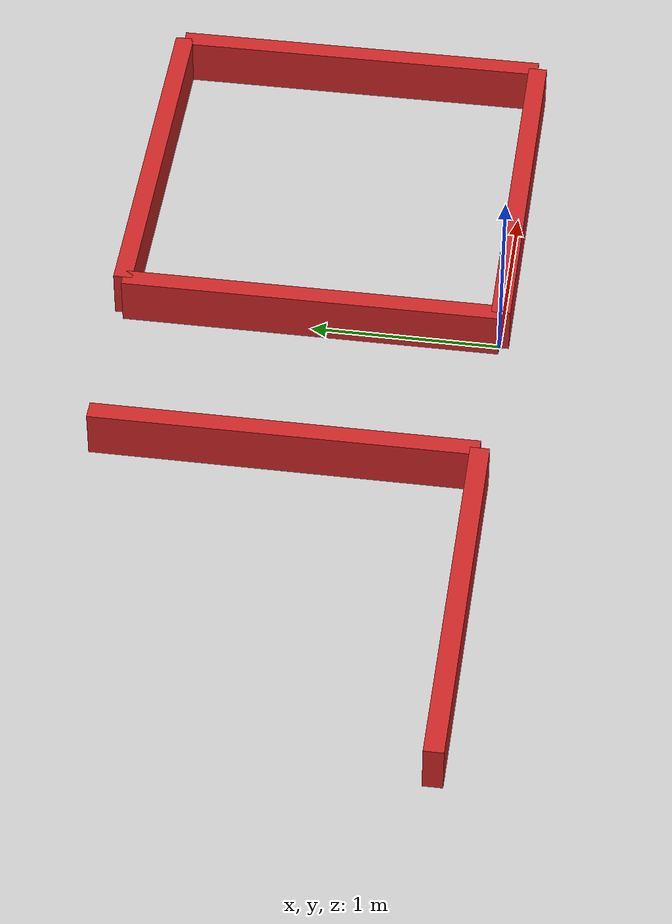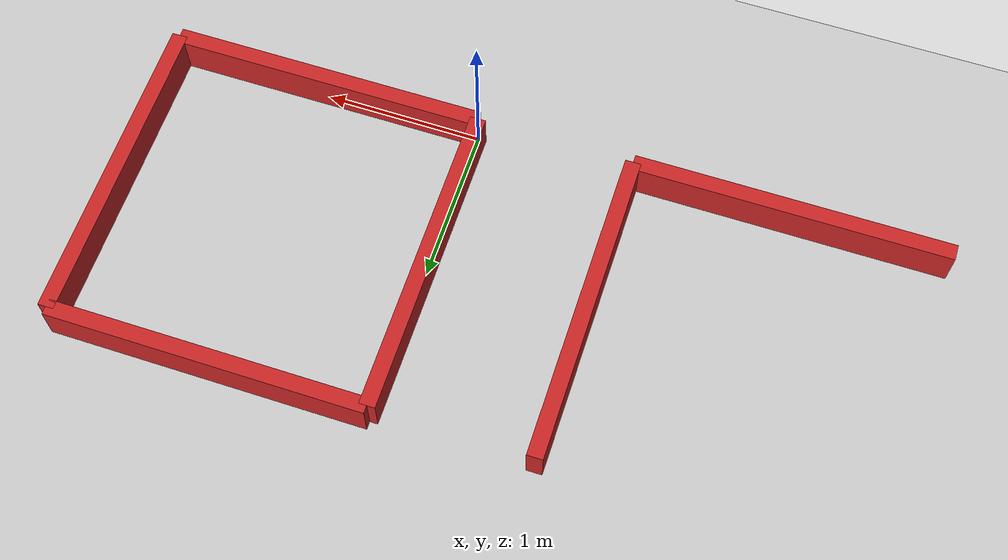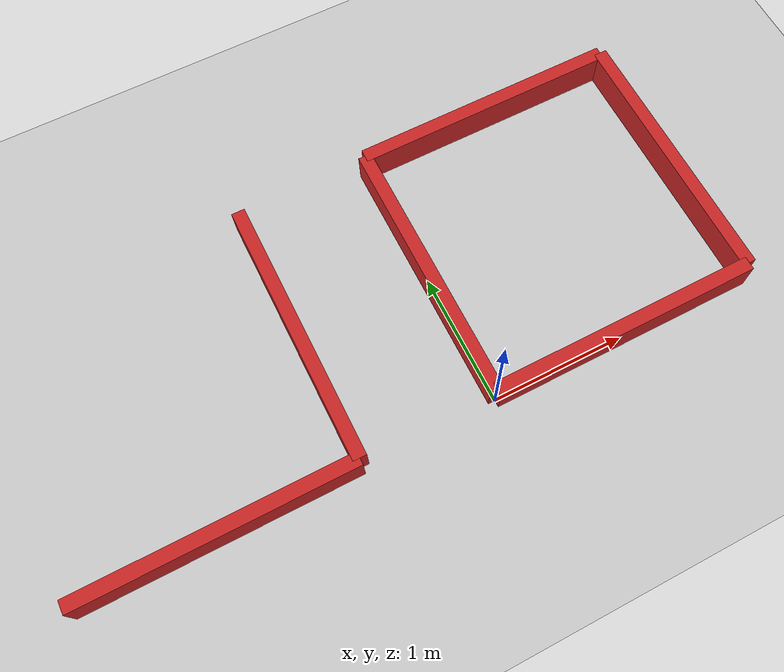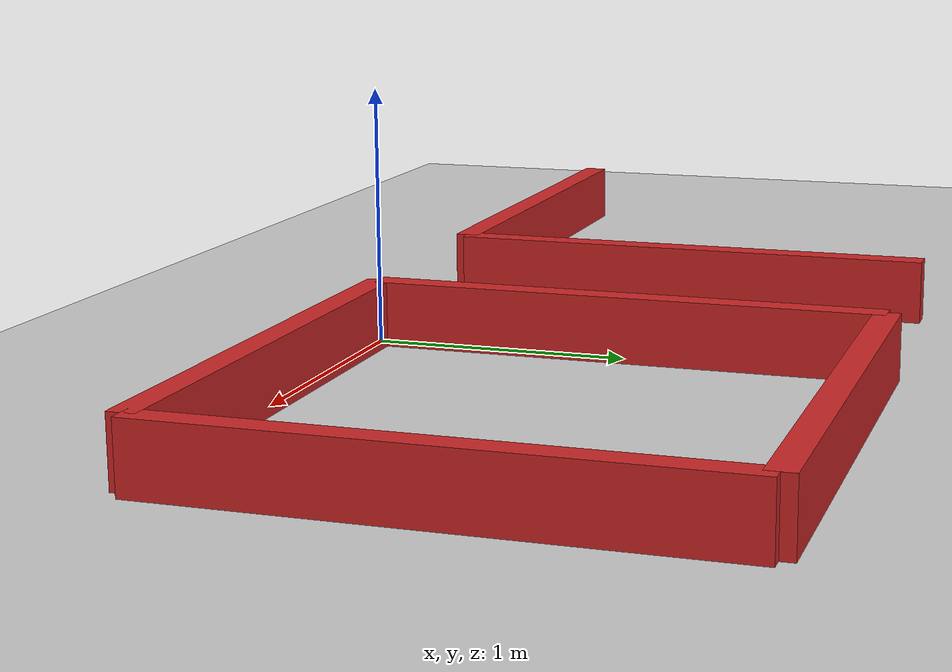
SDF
<?xml version="1.0" ?>
<sdf version="1.5">
  <world name="default">
    <include>
      <uri>model://sun</uri>
    </include>
    <include>
      <uri>model://ground_plane</uri>
    </include>

    <!-- Define the buggy start position -->
    <model name="buggy_start">
      <pose>0 0 0 0 0 0</pose>
    </model>

    <!-- Wall definitions -->
    <model name="wall_1">
      <pose>0 1 0 0 0 0</pose>
      <link name="link">
        <collision name="collision">
          <geometry>
            <box>
              <size>0.1 2 0.5</size>
            </box>
          </geometry>
          <surface>
            <contact>
              <ode/>
            </contact>
          </surface>
        </collision>
        <visual name="visual">
          <geometry>
            <box>
              <size>0.1 2 0.5</size>
            </box>
          </geometry>
          <material>
            <script>
              <uri>file://media/materials/scripts/gazebo.material</uri>
              <name>Gazebo/Red</name>
            </script>
          </material>
        </visual>
      </link>
    </model>

    <model name="wall_2">
      <pose>1 0 0 0 0 0</pose>
      <link name="link">
        <collision name="collision">
          <geometry>
            <box>
              <size>2 0.1 0.5</size>
            </box>
          </geometry>
          <surface>
            <contact>
              <ode/>
            </contact>
          </surface>
        </collision>
        <visual name="visual">
          <geometry>
            <box>
              <size>2 0.1 0.5</size>
            </box>
          </geometry>
          <material>
            <script>
              <uri>file://media/materials/scripts/gazebo.material</uri>
              <name>Gazebo/Red</name>
            </script>
          </material>
        </visual>
      </link>
    </model>

    <model name="wall_3">
      <pose>2 1 0 0 0 0</pose>
      <link name="link">
        <collision name="collision">
          <geometry>
            <box>
              <size>0.1 2 0.5</size>
            </box>
          </geometry>
          <surface>
            <contact>
              <ode/>
            </contact>
          </surface>
        </collision>
        <visual name="visual">
          <geometry>
            <box>
              <size>0.1 2 0.5</size>
            </box>
          </geometry>
          <material>
            <script>
              <uri>file://media/materials/scripts/gazebo.material</uri>
              <name>Gazebo/Red</name>
            </script>
          </material>
        </visual>
      </link>
    </model>

    <model name="wall_4">
      <pose>1 2 0 0 0 0</pose>
      <link name="link">
        <collision name="collision">
          <geometry>
            <box>
              <size>2 0.1 0.5</size>
            </box>
          </geometry>
          <surface>
            <contact>
              <ode/>
            </contact>
          </surface>
        </collision>
        <visual name="visual">
          <geometry>
            <box>
              <size>2 0.1 0.5</size>
            </box>
          </geometry>
          <material>
            <script>
              <uri>file://media/materials/scripts/gazebo.material</uri>
              <name>Gazebo/Red</name>
            </script>
          </material>
        </visual>
      </link>
    </model>

    <model name="wall_5">
      <pose>-1 1 0 0 0 0</pose>
      <link name="link">
        <collision name="collision">
          <geometry>
            <box>
              <size>0.1 2 0.5</size>
            </box>
          </geometry>
          <surface>
            <contact>
              <ode/>
            </contact>
          </surface>
        </collision>
        <visual name="visual">
          <geometry>
            <box>
              <size>0.1 2 0.5</size>
            </box>
          </geometry>
          <material>
            <script>
              <uri>file://media/materials/scripts/gazebo.material</uri>
              <name>Gazebo/Red</name>
            </script>
          </material>
        </visual>
      </link>
    </model>

    <model name="wall_6">
      <pose>-2 0 0 0 0 0</pose>
      <link name="link">
        <collision name="collision">
          <geometry>
            <box>
              <size>2 0.1 0.5</size>
            </box>
          </geometry>
          <surface>
            <contact>
              <ode/>
            </contact>
          </surface>
        </collision>
        <visual name="visual">
          <geometry>
            <box>
              <size>2 0.1 0.5</size>
            </box>
          </geometry>
          <material>
            <script>
              <uri>file://media/materials/scripts/gazebo.material</uri>
              <name>Gazebo/Red</name>
            </script>
          </material>
        </visual>
      </link>
    </model>
  </world>
</sdf>
